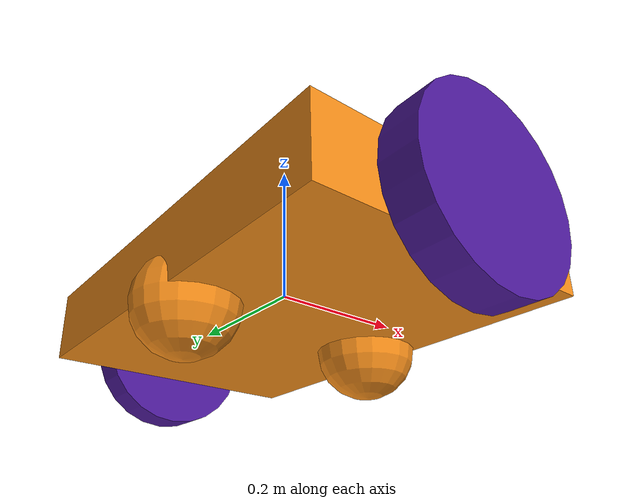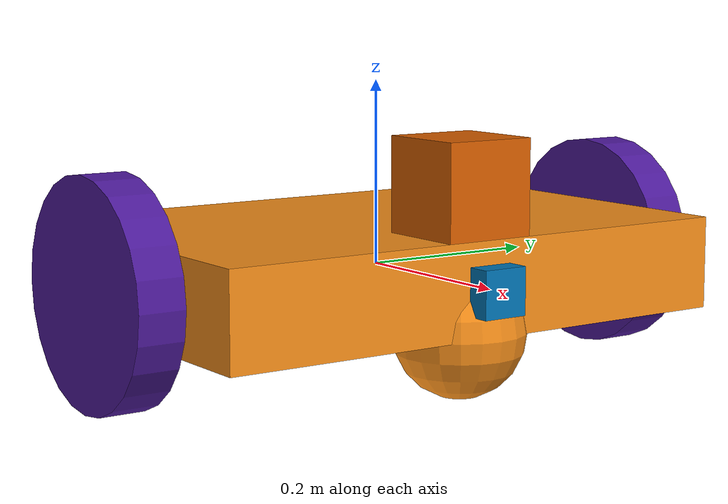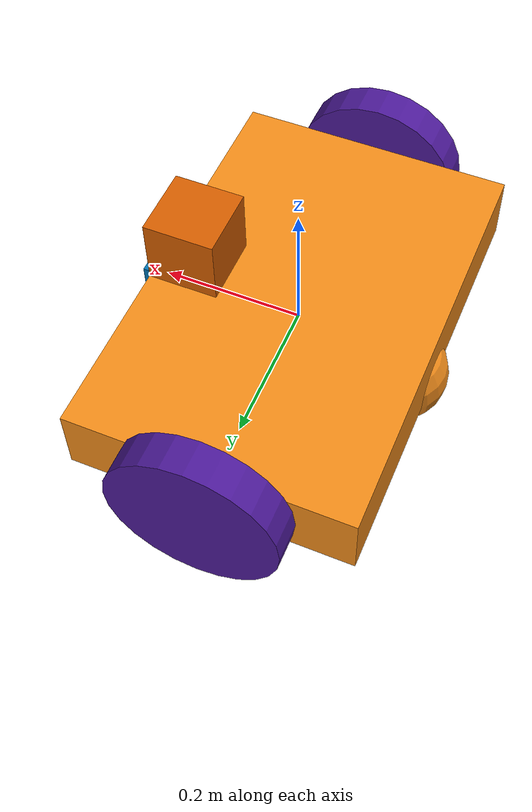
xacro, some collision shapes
<?xml version='1.0'?>

<robot name="my_robot" xmlns:xacro="http://www.ros.org/wiki/xacro">

    <xacro:include filename="$(find my_robot)/urdf/my_robot.gazebo" />

    <link name="robot_footprint"></link>

    <!-- Joint decalaration -->
    <joint name="robot_footprint_joint" type="fixed">
        <origin xyz="0 0 0" rpy= "0 0 0" />
        <parent link="robot_footprint"/>
        <child link="chassis"/>
    </joint>

    <joint name="left_wheel_hinge" type="continuous">
        <origin xyz="0 0.325 0" rpy= "0 0 0" />
        <parent link="chassis"/>
        <child link="left_wheel"/>
        <axis xyz="0 1 0" rpy="0 0 0"/>
        <limit effort="10000" velocity="1000"/>
        <dynamics damping="1.0" friction="1.0"/>
    </joint>

    <joint name="right_wheel_hinge" type="continuous">
        <origin xyz="0 -0.325 0" rpy= "0 0 0" />
        <parent link="chassis"/>
        <child link="right_wheel"/>
        <axis xyz="0 1 0" rpy="0 0 0"/>
        <limit effort="10000" velocity="1000"/>
        <dynamics damping="1.0" friction="1.0"/>
    </joint>

    <joint name="camera_joint" type="fixed">
        <origin xyz="0.2 0 0" rpy= "0 0 0" />
        <parent link="chassis"/>
        <child link="camera"/>
        <axis xyz="0 1 0" rpy="0 0 0"/>
    </joint>

    <joint name="hokuyo_joint" type="fixed">
        <origin xyz="0.15 0 0.1" rpy= "0 0 0" />
        <parent link="chassis"/>
        <child link="hokuyo"/>
        <axis xyz="0 1 0" rpy="0 0 0"/>
    </joint>

    <!-- Link decalaration -->
    <link name='chassis'>
        <pose>0 0 0.1 0 0 0</pose>

        <inertial>
            <mass value="15.0"/>
            <origin xyz="0.0 0 0" rpy="0 0 0"/>
            <inertia
                ixx="0.1" ixy="0" ixz="0"
                iyy="0.1" iyz="0"
                izz="0.1"
            />
        </inertial>

        <collision name='collision'>
            <origin xyz="0 0 0" rpy=" 0 0 0"/>
            <geometry>
                <box size = ".4 .6 .1"/>
            </geometry>
        </collision>

        <visual name='chassis_visual'>
            <origin xyz="0 0 0" rpy=" 0 0 0"/>
            <geometry>
                <box size = ".4 .6 .1"/>
            </geometry>
        </visual>

        <collision name='back_caster_collision'>
            <origin xyz="-0.15 0 -0.05" rpy="0 0 0"/>
            <geometry>
                <sphere radius="0.0699"/>
            </geometry>
        </collision>

        <visual name='back_caster_visual'>
            <origin xyz="-0.15 0 -0.05" rpy="0 0 0"/>
            <geometry>
                <sphere radius="0.07"/>
            </geometry>
        </visual>

        <collision name='front_caster_collision'>
            <origin xyz="0.15 0 -0.05" rpy="0 0 0"/>
            <geometry>
                <sphere radius="0.0699"/>
            </geometry>
        </collision>

        <visual name='front_caster_visual'>
            <origin xyz="0.15 0 -0.05" rpy="0 0 0"/>
            <geometry>
                <sphere radius="0.07"/>
            </geometry>
        </visual>

    </link>

    <link name='left_wheel'>
        <inertial>
            <mass value="5.0"/>
            <origin xyz="0.0 0 0" rpy="0 1.5707 1.5707"/>
            <inertia
                ixx="0.1" ixy="0" ixz="0"
                iyy="0.1" iyz="0"
                izz="0.1"
            />
        </inertial>

        <collision name='left_wheel_collision'>
            <origin xyz="0 0 0" rpy="0 1.5707 1.5707"/>
            <geometry>
                <cylinder radius="0.12" length="0.05"/>
            </geometry>
        </collision>

        <visual name='left_wheel_visual'>
            <origin xyz="0 0 0" rpy="0 1.5707 1.5707"/>
            <geometry>
                <cylinder radius="0.12" length="0.05"/>
            </geometry>
        </visual>
    </link>

    <link name='right_wheel'>
        <inertial>
            <mass value="5.0"/>
            <origin xyz="0.0 0 0" rpy="0 1.5707 1.5707"/>
            <inertia
                ixx="0.1" ixy="0" ixz="0"
                iyy="0.1" iyz="0"
                izz="0.1"
            />
        </inertial>

        <collision name='right_wheel_collision'>
            <origin xyz="0 0 0" rpy="0 1.5707 1.5707"/>
            <geometry>
                <cylinder radius="0.12" length="0.05"/>
            </geometry>
        </collision>

        <visual name='right_wheel_visual'>
            <origin xyz="0 0 0" rpy="0 1.5707 1.5707"/>
            <geometry>
                <cylinder radius="0.12" length="0.05"/>
            </geometry>
        </visual>
    </link>

    <link name='camera'>
        <inertial>
            <mass value="0.1"/>
            <origin xyz="0 0 0" rpy="0 0 0"/>
            <box_inertia m="0.1" x="0.05" y="0.05" z="0.05"/>
            <inertia
                ixx="1e-6" ixy="0" ixz="0"
                iyy="1e-6" iyz="0"
                izz="1e-6"
            />
        </inertial>

        <collision name='camera_collision'>
            <origin xyz="0 0 0" rpy="0 0 0"/>
            <geometry>
                <box size="0.05 0.05 0.05"/>
            </geometry>
        </collision>

        <visual name='camera_visual'>
            <origin xyz="0 0 0" rpy="0 0 0"/>
            <geometry>
                <box size="0.05 0.05 0.05"/>
            </geometry>
        </visual>
    </link>

    <link name='hokuyo'>
        <inertial>
            <mass value="1e-5"/>
            <origin xyz="0 0 0" rpy="0 0 0"/>
            <inertia
                ixx="1e-6" ixy="0" ixz="0"
                iyy="1e-6" iyz="0"
                izz="1e-6"
            />
        </inertial>

        <collision name='hokuyo_collision'>
            <origin xyz="0 0 0" rpy="0 0 0"/>
            <geometry>
                <box size="0.1 0.1 0.1"/>
            </geometry>
        </collision>

        <visual name='hokuyo_visual'>
            <origin xyz="0 0 0" rpy="0 0 0"/>
            <geometry>
                <mesh filename="package://my_robot/meshes/hokuyo.dae"/>
            </geometry>
        </visual>
    </link>

    <!-- Color decalaration -->
    <gazebo reference="chassis">
        <material>Gazebo/Orange</material>
    </gazebo>

    <gazebo reference="left_wheel">
        <material>Gazebo/Indigo</material>
    </gazebo>

    <gazebo reference="right_wheel">
        <material>Gazebo/Indigo</material>
    </gazebo>

    <gazebo reference="camera">
        <material>Gazebo/LightOn</material>
    </gazebo>

</robot>
